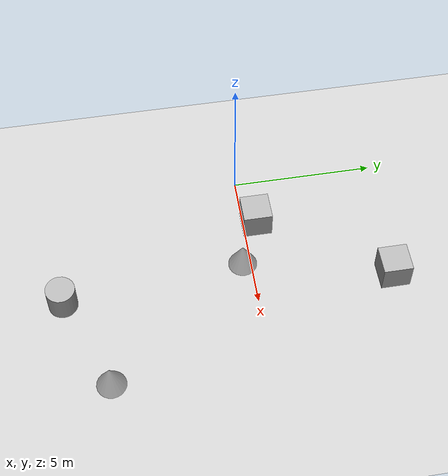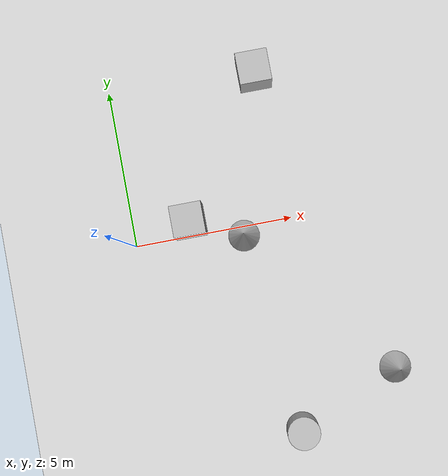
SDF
<sdf version='1.10'>
  <world name='empty'>
    <physics name='1ms' type='ignored'>
      <max_step_size>0.001</max_step_size>
      <real_time_factor>1</real_time_factor>
      <real_time_update_rate>1000</real_time_update_rate>
    </physics>
    <plugin name='gz::sim::systems::Physics' filename='gz-sim-physics-system'/>
    <plugin name='gz::sim::systems::UserCommands' filename='gz-sim-user-commands-system'/>
    <plugin name='gz::sim::systems::SceneBroadcaster' filename='gz-sim-scene-broadcaster-system'/>
    <plugin name='gz::sim::systems::Contact' filename='gz-sim-contact-system'/>
    <gravity>0 0 -9.8000000000000007</gravity>
    <magnetic_field>5.5644999999999998e-06 2.2875799999999999e-05 -4.2388400000000002e-05</magnetic_field>
    <atmosphere type='adiabatic'/>
    <scene>
      <ambient>0.400000006 0.400000006 0.400000006 1</ambient>
      <background>0.699999988 0.699999988 0.699999988 1</background>
      <shadows>true</shadows>
    </scene>
    <model name='ground_plane'>
      <static>true</static>
      <link name='link'>
        <collision name='collision'>
          <geometry>
            <plane>
              <normal>0 0 1</normal>
              <size>100 100</size>
            </plane>
          </geometry>
          <surface>
            <friction>
              <ode/>
            </friction>
            <bounce/>
            <contact/>
          </surface>
        </collision>
        <visual name='visual'>
          <geometry>
            <plane>
              <normal>0 0 1</normal>
              <size>100 100</size>
            </plane>
          </geometry>
          <material>
            <ambient>0.800000012 0.800000012 0.800000012 1</ambient>
            <diffuse>0.800000012 0.800000012 0.800000012 1</diffuse>
            <specular>0.800000012 0.800000012 0.800000012 1</specular>
          </material>
        </visual>
        <pose>0 0 0 0 0 0</pose>
        <inertial>
          <pose>0 0 0 0 0 0</pose>
          <mass>1</mass>
          <inertia>
            <ixx>1</ixx>
            <ixy>0</ixy>
            <ixz>0</ixz>
            <iyy>1</iyy>
            <iyz>0</iyz>
            <izz>1</izz>
          </inertia>
        </inertial>
        <enable_wind>false</enable_wind>
      </link>
      <pose>0 0 0 0 0 0</pose>
      <self_collide>false</self_collide>
    </model>
    <model name='box'>
      <pose>4.6747120295810358 4.7414649047212887 0.49999999990199806 6.2287739151293738e-22 9.3279666454713669e-22 -3.6315533669320137e-22</pose>
      <link name='box_link'>
        <inertial>
          <inertia>
            <ixx>0.16666</ixx>
            <ixy>0</ixy>
            <ixz>0</ixz>
            <iyy>0.16666</iyy>
            <iyz>0</iyz>
            <izz>0.16666</izz>
          </inertia>
          <mass>1</mass>
          <pose>0 0 0 0 0 0</pose>
        </inertial>
        <collision name='box_collision'>
          <geometry>
            <box>
              <size>1 1 1</size>
            </box>
          </geometry>
          <surface>
            <friction>
              <ode/>
            </friction>
            <bounce/>
            <contact/>
          </surface>
        </collision>
        <visual name='box_visual'>
          <geometry>
            <box>
              <size>1 1 1</size>
            </box>
          </geometry>
          <material>
            <ambient>0.300000012 0.300000012 0.300000012 1</ambient>
            <diffuse>0.699999988 0.699999988 0.699999988 1</diffuse>
            <specular>1 1 1 1</specular>
          </material>
        </visual>
        <pose>0 0 0 0 0 0</pose>
        <enable_wind>false</enable_wind>
      </link>
      <static>false</static>
      <self_collide>false</self_collide>
    </model>
    <model name='cone'>
      <pose>7.3354240881790034 -5.2442287491699622 0.49999999993296756 5.2541471503228405e-17 -7.7132841033694056e-10 -2.8937183272912105e-22</pose>
      <link name='cone_link'>
        <inertial>
          <inertia>
            <ixx>0.074999999999999997</ixx>
            <ixy>0</ixy>
            <ixz>0</ixz>
            <iyy>0.074999999999999997</iyy>
            <iyz>0</iyz>
            <izz>0.074999999999999997</izz>
          </inertia>
          <mass>1</mass>
          <pose>0 0 0 0 0 0</pose>
        </inertial>
        <collision name='cone_collision'>
          <geometry>
            <cone>
              <radius>0.5</radius>
              <length>1</length>
            </cone>
          </geometry>
          <surface>
            <friction>
              <ode/>
            </friction>
            <bounce/>
            <contact/>
          </surface>
        </collision>
        <visual name='cone_visual'>
          <geometry>
            <cone>
              <radius>0.5</radius>
              <length>1</length>
            </cone>
          </geometry>
          <material>
            <ambient>0.300000012 0.300000012 0.300000012 1</ambient>
            <diffuse>0.699999988 0.699999988 0.699999988 1</diffuse>
            <specular>1 1 1 1</specular>
          </material>
        </visual>
        <pose>0 0 0 0 0 0</pose>
        <enable_wind>false</enable_wind>
      </link>
      <static>false</static>
      <self_collide>false</self_collide>
    </model>
    <model name='cylinder'>
      <pose>4.0975758214514748 -6.5657586655028837 0.49999942638036005 1.6530430330122126e-19 7.7412532640977062e-20 -1.2109423104930162e-20</pose>
      <link name='cylinder_link'>
        <inertial>
          <inertia>
            <ixx>0.14580000000000001</ixx>
            <ixy>0</ixy>
            <ixz>0</ixz>
            <iyy>0.14580000000000001</iyy>
            <iyz>0</iyz>
            <izz>0.125</izz>
          </inertia>
          <mass>1</mass>
          <pose>0 0 0 0 0 0</pose>
        </inertial>
        <collision name='cylinder_collision'>
          <geometry>
            <cylinder>
              <radius>0.5</radius>
              <length>1</length>
            </cylinder>
          </geometry>
          <surface>
            <friction>
              <ode/>
            </friction>
            <bounce/>
            <contact/>
          </surface>
        </collision>
        <visual name='cylinder_visual'>
          <geometry>
            <cylinder>
              <radius>0.5</radius>
              <length>1</length>
            </cylinder>
          </geometry>
          <material>
            <ambient>0.300000012 0.300000012 0.300000012 1</ambient>
            <diffuse>0.699999988 0.699999988 0.699999988 1</diffuse>
            <specular>1 1 1 1</specular>
          </material>
        </visual>
        <pose>0 0 0 0 0 0</pose>
        <enable_wind>false</enable_wind>
      </link>
      <static>false</static>
      <self_collide>false</self_collide>
    </model>
    <model name='box_0'>
      <pose>1.8049168689691397 0.45195296320103573 0.49999999990199806 6.2287739151293738e-22 9.3279666454713669e-22 -3.6315533669320137e-22</pose>
      <link name='box_link'>
        <inertial>
          <inertia>
            <ixx>0.16666</ixx>
            <ixy>0</ixy>
            <ixz>0</ixz>
            <iyy>0.16666</iyy>
            <iyz>0</iyz>
            <izz>0.16666</izz>
          </inertia>
          <mass>1</mass>
          <pose>0 0 0 0 0 0</pose>
        </inertial>
        <collision name='box_collision'>
          <geometry>
            <box>
              <size>1 1 1</size>
            </box>
          </geometry>
          <surface>
            <friction>
              <ode/>
            </friction>
            <bounce/>
            <contact/>
          </surface>
        </collision>
        <visual name='box_visual'>
          <geometry>
            <box>
              <size>1 1 1</size>
            </box>
          </geometry>
          <material>
            <ambient>0.300000012 0.300000012 0.300000012 1</ambient>
            <diffuse>0.699999988 0.699999988 0.699999988 1</diffuse>
            <specular>1 1 1 1</specular>
          </material>
        </visual>
        <pose>0 0 0 0 0 0</pose>
        <enable_wind>false</enable_wind>
      </link>
      <static>false</static>
      <self_collide>false</self_collide>
    </model>
    <model name='cone_0'>
      <pose>3.4219676709509295 -0.28773500296402693 0.49999999993296756 5.2552350257257945e-17 -7.7132841038048211e-10 -2.0658939308303899e-23</pose>
      <link name='cone_link'>
        <inertial>
          <inertia>
            <ixx>0.074999999999999997</ixx>
            <ixy>0</ixy>
            <ixz>0</ixz>
            <iyy>0.074999999999999997</iyy>
            <iyz>0</iyz>
            <izz>0.074999999999999997</izz>
          </inertia>
          <mass>1</mass>
          <pose>0 0 0 0 0 0</pose>
        </inertial>
        <collision name='cone_collision'>
          <geometry>
            <cone>
              <radius>0.5</radius>
              <length>1</length>
            </cone>
          </geometry>
          <surface>
            <friction>
              <ode/>
            </friction>
            <bounce/>
            <contact/>
          </surface>
        </collision>
        <visual name='cone_visual'>
          <geometry>
            <cone>
              <radius>0.5</radius>
              <length>1</length>
            </cone>
          </geometry>
          <material>
            <ambient>0.300000012 0.300000012 0.300000012 1</ambient>
            <diffuse>0.699999988 0.699999988 0.699999988 1</diffuse>
            <specular>1 1 1 1</specular>
          </material>
        </visual>
        <pose>0 0 0 0 0 0</pose>
        <enable_wind>false</enable_wind>
      </link>
      <static>false</static>
      <self_collide>false</self_collide>
    </model>
    <light name='sun' type='directional'>
      <pose>0 0 10 0 0 0</pose>
      <cast_shadows>true</cast_shadows>
      <intensity>1</intensity>
      <direction>-0.5 0.10000000000000001 -0.90000000000000002</direction>
      <diffuse>0.800000012 0.800000012 0.800000012 1</diffuse>
      <specular>0.200000003 0.200000003 0.200000003 1</specular>
      <attenuation>
        <range>1000</range>
        <linear>0.0099999997764825821</linear>
        <constant>0.89999997615814209</constant>
        <quadratic>0.0010000000474974513</quadratic>
      </attenuation>
      <spot>
        <inner_angle>0</inner_angle>
        <outer_angle>0</outer_angle>
        <falloff>0</falloff>
      </spot>
    </light>
  </world>
</sdf>
